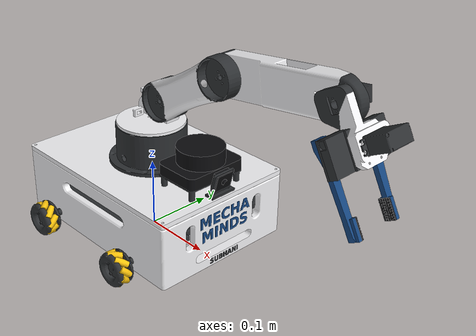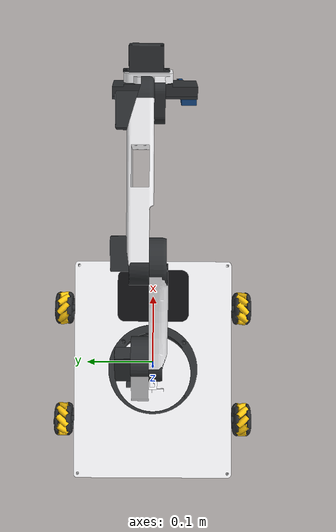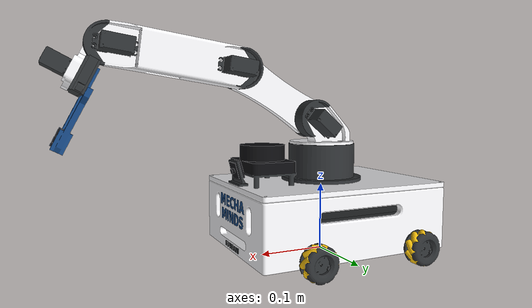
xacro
<?xml version="1.0"?>
<robot name="amr" xmlns:xacro="http://www.ros.org/wiki/xacro" xmlns:gz="http://gazebosim.org/schema">
  <xacro:arg name="sim" default="false"/>
  <xacro:arg name="namespace" default=""/>
  <xacro:arg name="controllers" default=""/>
  <xacro:property name="is_sim" value="$(arg sim)"/>
  <xacro:property name="grip_margin" value="${0.03 if str(is_sim).lower() == 'true' else 0.0}"/>

  <xacro:include filename="$(find amr_description)/urdf/generated/amr_cad.xacro"/>
  <xacro:include filename="$(find amr_description)/urdf/gripper.xacro"/>

  <!-- 2 left + 2 right wheels, in the X roller pattern -->
  <xacro:macro name="mecanum_wheel" params="name x y z radius mass width">
    <link name="${name}_wheel">
      <inertial><mass value="${mass}"/>
        <inertia ixx="${mass*(3*radius*radius+width*width)/12}" ixy="0" ixz="0"
                 iyy="${mass*radius*radius/2}" iyz="0" izz="${mass*(3*radius*radius+width*width)/12}"/>
      </inertial>
      <visual><geometry><mesh filename="package://amr_description/meshes/visual/wheel_${name}__hub.stl"/></geometry>
        <material name="amr_hub"><color rgba="0.18 0.19 0.20 1"/></material></visual>
      <visual><geometry><mesh filename="package://amr_description/meshes/visual/wheel_${name}__roller.stl"/></geometry>
        <material name="amr_roller"><color rgba="1.00 0.78 0.05 1"/></material></visual>
      <!-- a sphere rolls cleanly. Gazebo adds roller friction to it: see amr_gazebo/launch/robot_sdf.py -->
      <collision name="${name}_wheel"><geometry><sphere radius="${radius}"/></geometry></collision>
    </link>
    <joint name="${name}_wheel_joint" type="continuous">
      <parent link="base_link"/><child link="${name}_wheel"/>
      <origin xyz="${x} ${y} ${z}"/><axis xyz="0 1 0"/>
      <limit effort="3.0" velocity="25.0"/><dynamics damping="0.01" friction="0.01"/>
    </joint>
  </xacro:macro>

  <xacro:amr_cad_body/>
  <xacro:amr_gripper/>
  <xacro:amr_cad_wheels/>

  <!-- ===== sensors ===== -->
  <xacro:property name="lidar_x" value="0.100"/>
  <xacro:property name="camera_x" value="0.1375"/>

  <link name="lidar_mount">
    <inertial><origin xyz="0 0 0.012"/><mass value="0.03"/><inertia ixx="2e-5" ixy="0" ixz="0" iyy="1e-5" iyz="0" izz="3e-5"/></inertial>
    <visual><geometry><mesh filename="package://amr_description/meshes/mounts/lidar_mount.stl" scale="0.001 0.001 0.001"/></geometry>
      <material name="amr_mount"><color rgba="0.18 0.19 0.20 1"/></material></visual>
  </link>
  <joint name="lidar_mount_joint" type="fixed"><parent link="base_link"/><child link="lidar_mount"/>
    <origin xyz="${lidar_x} 0 ${deck_z}"/></joint>

  <!-- lidar_link origin is the scan plane: 18 mm mount + 32 mm to the optical centre -->
  <link name="lidar_link">
    <inertial><mass value="0.19"/><inertia ixx="1e-4" ixy="0" ixz="0" iyy="1e-4" iyz="0" izz="1e-4"/></inertial>
    <visual><origin xyz="0 0 -0.032"/><geometry><mesh filename="package://amr_description/meshes/mounts/lidar_body.stl" scale="0.001 0.001 0.001"/></geometry>
      <material name="amr_black"><color rgba="0.05 0.05 0.06 1"/></material></visual>
    <collision><origin xyz="0 0 -0.013"/><geometry><cylinder radius="0.035" length="0.038"/></geometry></collision>
  </link>
  <joint name="lidar_joint" type="fixed"><parent link="lidar_mount"/><child link="lidar_link"/>
    <origin xyz="0 0 0.050"/></joint>

  <link name="camera_mount">
    <inertial><origin xyz="0 0 0.01"/><mass value="0.015"/><inertia ixx="3e-6" ixy="0" ixz="0" iyy="3e-6" iyz="0" izz="3e-6"/></inertial>
    <visual><geometry><mesh filename="package://amr_description/meshes/mounts/camera_mount.stl" scale="0.001 0.001 0.001"/></geometry>
      <material name="amr_mount"><color rgba="0.18 0.19 0.20 1"/></material></visual>
  </link>
  <joint name="camera_mount_joint" type="fixed"><parent link="base_link"/><child link="camera_mount"/>
    <origin xyz="${camera_x} 0 ${deck_z}"/></joint>

  <!-- camera_link: x along the lens, tilted 15 degrees down -->
  <link name="camera_link">
    <inertial><mass value="0.02"/><inertia ixx="2e-6" ixy="0" ixz="0" iyy="2e-6" iyz="0" izz="2e-6"/></inertial>
    <visual><origin xyz="-0.0045 0 0"/><geometry><mesh filename="package://amr_description/meshes/mounts/camera_body.stl" scale="0.001 0.001 0.001"/></geometry>
      <material name="amr_black"><color rgba="0.05 0.05 0.06 1"/></material></visual>
  </link>
  <joint name="camera_joint" type="fixed"><parent link="camera_mount"/><child link="camera_link"/>
    <origin xyz="0.0065 0 0.020" rpy="0 ${radians(15)} 0"/></joint>
  <link name="camera_optical_frame"/>
  <joint name="camera_optical_joint" type="fixed"><parent link="camera_link"/><child link="camera_optical_frame"/>
    <origin rpy="${-pi/2} 0 ${-pi/2}"/></joint>

  <!-- Front-face branding: visual only, meshes are in the base_link frame (make_mounts.py) -->
  <link name="branding">
    <inertial><mass value="0.001"/><inertia ixx="1e-7" ixy="0" ixz="0" iyy="1e-7" iyz="0" izz="1e-7"/></inertial>
    <visual><geometry><mesh filename="package://amr_description/meshes/mounts/brand_name.stl" scale="0.001 0.001 0.001"/></geometry>
      <material name="amr_brand_blue"><color rgba="0.08 0.27 0.50 1"/></material></visual>
    <visual><geometry><mesh filename="package://amr_description/meshes/mounts/brand_author.stl" scale="0.001 0.001 0.001"/></geometry>
      <material name="amr_brand_dark"><color rgba="0.18 0.19 0.20 1"/></material></visual>
  </link>
  <joint name="branding_joint" type="fixed"><parent link="base_link"/><child link="branding"/></joint>

  <xacro:if value="${is_sim}">
    <xacro:include filename="$(find amr_description)/urdf/amr.gazebo.xacro"/>
    <xacro:amr_gazebo namespace="$(arg namespace)" controllers="$(arg controllers)"/>
  </xacro:if>
</robot>

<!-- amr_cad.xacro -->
<!-- GENERATED by tools/cad_to_urdf.py from cad/mobile_base_1_robotic_arm.STEP. Do not edit; re-run the tool. -->
<robot xmlns:xacro="http://www.ros.org/wiki/xacro">
  <xacro:property name="wheel_radius" value="0.02442"/>
  <xacro:property name="grip_x" value="0.030152"/>
  <xacro:property name="grip_y" value="-0.000693"/>
  <xacro:property name="grip_z" value="-0.039474"/>
  <xacro:property name="grip_pitch" value="-0.487586"/>
  <xacro:property name="deck_z" value="0.10842"/>
  <xacro:macro name="amr_cad_body">
  <link name="base_link">
    <inertial><origin xyz="-0.005331 0.000157 0.056978" rpy="0 0 0"/><mass value="3.51685"/><inertia ixx="0.01719328" ixy="0.00000840" ixz="0.00033798" iyy="0.03018462" iyz="-0.00004636" izz="0.04001222"/></inertial>
    <visual name="base_link_body"><geometry><mesh filename="package://amr_description/meshes/visual/base_link__body.stl"/></geometry><material name="amr_body"><color rgba="0.960000 0.960000 0.970000 1.000000"/></material></visual>
    <visual name="base_link_metal"><geometry><mesh filename="package://amr_description/meshes/visual/base_link__metal.stl"/></geometry><material name="amr_metal"><color rgba="0.180000 0.190000 0.200000 1.000000"/></material></visual>
    <visual name="base_link_motor"><geometry><mesh filename="package://amr_description/meshes/visual/base_link__motor.stl"/></geometry><material name="amr_motor"><color rgba="0.180000 0.190000 0.200000 1.000000"/></material></visual>
    <visual name="base_link_deck"><geometry><mesh filename="package://amr_description/meshes/visual/base_link__deck.stl"/></geometry><material name="amr_deck"><color rgba="0.960000 0.960000 0.970000 1.000000"/></material></visual>
    <visual name="base_link_plate"><geometry><mesh filename="package://amr_description/meshes/visual/base_link__plate.stl"/></geometry><material name="amr_plate"><color rgba="0.180000 0.190000 0.200000 1.000000"/></material></visual>
    <visual name="base_link_pcb"><geometry><mesh filename="package://amr_description/meshes/visual/base_link__pcb.stl"/></geometry><material name="amr_pcb"><color rgba="0.180000 0.190000 0.200000 1.000000"/></material></visual>
    <visual name="base_link_joint"><geometry><mesh filename="package://amr_description/meshes/visual/base_link__joint.stl"/></geometry><material name="amr_joint"><color rgba="0.180000 0.190000 0.200000 1.000000"/></material></visual>
    <visual name="base_link_servo"><geometry><mesh filename="package://amr_description/meshes/visual/base_link__servo.stl"/></geometry><material name="amr_servo"><color rgba="0.180000 0.190000 0.200000 1.000000"/></material></visual>
    <collision name="chassis_collision"><origin xyz="0 0 0.05942"/><geometry><box size="0.295 0.215 0.09800"/></geometry></collision>
    <collision name="arm_pedestal_collision"><origin xyz="0 0 0.13592"/><geometry><cylinder radius="0.0605" length="0.05500"/></geometry></collision>
  </link>

  <link name="arm_turret">
    <inertial><origin xyz="0.009924 0.017912 0.025527" rpy="0 0 0"/><mass value="0.10950"/><inertia ixx="0.00006434" ixy="-0.00000663" ixz="-0.00001444" iyy="0.00006900" iyz="-0.00001215" izz="0.00007406"/></inertial>
    <visual name="arm_turret_arm"><geometry><mesh filename="package://amr_description/meshes/visual/arm_turret__arm.stl"/></geometry><material name="amr_arm"><color rgba="0.960000 0.960000 0.970000 1.000000"/></material></visual>
    <visual name="arm_turret_servo"><geometry><mesh filename="package://amr_description/meshes/visual/arm_turret__servo.stl"/></geometry><material name="amr_servo"><color rgba="0.180000 0.190000 0.200000 1.000000"/></material></visual>
    <visual name="arm_turret_joint"><geometry><mesh filename="package://amr_description/meshes/visual/arm_turret__joint.stl"/></geometry><material name="amr_joint"><color rgba="0.180000 0.190000 0.200000 1.000000"/></material></visual>
    <collision name="arm_turret_collision"><geometry><mesh filename="package://amr_description/meshes/collision/arm_turret.stl"/></geometry></collision>
  </link>

  <link name="arm_upper">
    <inertial><origin xyz="0.057685 -0.003706 0.034807" rpy="0 0 0"/><mass value="0.09840"/><inertia ixx="0.00007663" ixy="0.00000054" ixz="-0.00008514" iyy="0.00023726" iyz="0.00000030" izz="0.00016798"/></inertial>
    <visual name="arm_upper_arm"><geometry><mesh filename="package://amr_description/meshes/visual/arm_upper__arm.stl"/></geometry><material name="amr_arm"><color rgba="0.960000 0.960000 0.970000 1.000000"/></material></visual>
    <visual name="arm_upper_joint"><geometry><mesh filename="package://amr_description/meshes/visual/arm_upper__joint.stl"/></geometry><material name="amr_joint"><color rgba="0.180000 0.190000 0.200000 1.000000"/></material></visual>
    <collision name="arm_upper_collision"><geometry><mesh filename="package://amr_description/meshes/collision/arm_upper.stl"/></geometry></collision>
  </link>

  <link name="arm_forearm">
    <inertial><origin xyz="0.084882 0.019654 0.011834" rpy="0 0 0"/><mass value="0.24016"/><inertia ixx="0.00009471" ixy="0.00003236" ixz="-0.00014888" iyy="0.00116809" iyz="0.00000451" izz="0.00114227"/></inertial>
    <visual name="arm_forearm_arm"><geometry><mesh filename="package://amr_description/meshes/visual/arm_forearm__arm.stl"/></geometry><material name="amr_arm"><color rgba="0.960000 0.960000 0.970000 1.000000"/></material></visual>
    <visual name="arm_forearm_servo"><geometry><mesh filename="package://amr_description/meshes/visual/arm_forearm__servo.stl"/></geometry><material name="amr_servo"><color rgba="0.180000 0.190000 0.200000 1.000000"/></material></visual>
    <visual name="arm_forearm_joint"><geometry><mesh filename="package://amr_description/meshes/visual/arm_forearm__joint.stl"/></geometry><material name="amr_joint"><color rgba="0.180000 0.190000 0.200000 1.000000"/></material></visual>
    <collision name="arm_forearm_collision"><geometry><mesh filename="package://amr_description/meshes/collision/arm_forearm.stl"/></geometry></collision>
  </link>

  <link name="arm_wrist">
    <inertial><origin xyz="0.042666 0.005774 -0.023243" rpy="0 0 0"/><mass value="0.08184"/><inertia ixx="0.00002886" ixy="-0.00000950" ixz="0.00001318" iyy="0.00005679" iyz="0.00000405" izz="0.00005535"/></inertial>
    <visual name="arm_wrist_arm"><geometry><mesh filename="package://amr_description/meshes/visual/arm_wrist__arm.stl"/></geometry><material name="amr_arm"><color rgba="0.960000 0.960000 0.970000 1.000000"/></material></visual>
    <visual name="arm_wrist_servo"><geometry><mesh filename="package://amr_description/meshes/visual/arm_wrist__servo.stl"/></geometry><material name="amr_servo"><color rgba="0.180000 0.190000 0.200000 1.000000"/></material></visual>
    <visual name="arm_wrist_joint"><geometry><mesh filename="package://amr_description/meshes/visual/arm_wrist__joint.stl"/></geometry><material name="amr_joint"><color rgba="0.180000 0.190000 0.200000 1.000000"/></material></visual>
    <collision name="arm_wrist_collision"><geometry><mesh filename="package://amr_description/meshes/collision/arm_wrist.stl"/></geometry></collision>
  </link>

  <joint name="arm_waist_joint" type="revolute"><parent link="base_link"/><child link="arm_turret"/><origin xyz="0.000000 0.000000 0.163424" rpy="0 0 0"/><axis xyz="0.000000 0.000000 1.000000"/><limit lower="-1.5700" upper="1.5700" effort="1.0" velocity="1.5"/><dynamics damping="0.02" friction="0.01"/></joint>
  <joint name="arm_shoulder_joint" type="revolute"><parent link="arm_turret"/><child link="arm_upper"/><origin xyz="0.021710 0.000000 0.037910" rpy="0 0 0"/><axis xyz="0.000000 1.000000 0.000000"/><limit lower="-1.0500" upper="0.5900" effort="3.0" velocity="1.5"/><dynamics damping="0.02" friction="0.01"/></joint>
  <joint name="arm_elbow_joint" type="revolute"><parent link="arm_upper"/><child link="arm_forearm"/><origin xyz="0.114793 0.000000 0.069127" rpy="0 0 0"/><axis xyz="0.000000 1.000000 0.000000"/><limit lower="-1.5700" upper="1.0100" effort="2.0" velocity="1.5"/><dynamics damping="0.02" friction="0.01"/></joint>
  <joint name="arm_wrist_joint" type="revolute"><parent link="arm_forearm"/><child link="arm_wrist"/><origin xyz="0.177285 0.000000 0.024716" rpy="0 0 0"/><axis xyz="0.000000 1.000000 0.000000"/><limit lower="-1.5700" upper="1.1000" effort="1.0" velocity="1.5"/><dynamics damping="0.02" friction="0.01"/></joint>

  </xacro:macro>
  <xacro:macro name="amr_cad_wheels">
  <xacro:mecanum_wheel name="front_left" x="0.08250" y="0.13190" z="0.02442" radius="0.02442" mass="0.09" width="0.025"/>
  <xacro:mecanum_wheel name="front_right" x="0.08250" y="-0.13190" z="0.02442" radius="0.02442" mass="0.09" width="0.025"/>
  <xacro:mecanum_wheel name="rear_left" x="-0.08250" y="0.13190" z="0.02442" radius="0.02442" mass="0.09" width="0.025"/>
  <xacro:mecanum_wheel name="rear_right" x="-0.08250" y="-0.13190" z="0.02442" radius="0.02442" mass="0.09" width="0.025"/>
  </xacro:macro>
</robot>

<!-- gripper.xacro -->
<robot xmlns:xacro="http://www.ros.org/wiki/xacro">
  <xacro:property name="gear_r" value="0.0125"/>
  <xacro:property name="grip_q_max" value="2.2"/>
  <xacro:property name="tcp_fx" value="-0.0145"/>
  <xacro:property name="tcp_fz" value="-0.0922"/>
  <xacro:property name="pad_fx" value="-0.0145"/>
  <xacro:property name="pad_fz" value="-0.081"/>

  <xacro:macro name="grip_visual" params="mesh material rgba">
    <visual><origin rpy="0 ${grip_pitch} 0"/>
      <geometry><mesh filename="package://amr_description/meshes/gripper/${mesh}.stl" scale="0.001 0.001 0.001"/></geometry>
      <material name="${material}"><color rgba="${rgba}"/></material></visual>
  </xacro:macro>
  <xacro:macro name="grip_inertial" params="mass">
    <inertial><mass value="${mass}"/><inertia ixx="1e-5" ixy="0" ixz="0" iyy="1e-5" iyz="0" izz="1e-5"/></inertial>
  </xacro:macro>

  <xacro:macro name="jaw" params="side finger rack pad sign">
    <link name="gripper_finger_${side}">
      <xacro:grip_inertial mass="0.025"/>
      <xacro:grip_visual mesh="${finger}" material="amr_accent" rgba="0.08 0.27 0.50 1"/>
      <xacro:grip_visual mesh="${pad}" material="amr_pad" rgba="0.05 0.05 0.06 1"/>
      <xacro:grip_visual mesh="${rack}" material="amr_gear" rgba="0.18 0.19 0.20 1"/>
      <collision name="gripper_finger_${side}_pad">
        <origin xyz="${pad_fx * cos(grip_pitch) + pad_fz * sin(grip_pitch)} ${sign * 0.02925} ${-pad_fx * sin(grip_pitch) + pad_fz * cos(grip_pitch)}" rpy="0 ${grip_pitch} 0"/>
        <geometry><box size="0.015 0.0025 0.026"/></geometry></collision>
    </link>
    <joint name="gripper_finger_${side}_joint" type="prismatic">
      <parent link="arm_wrist"/><child link="gripper_finger_${side}"/>
      <origin xyz="${grip_x} ${grip_y} ${grip_z}"/><axis xyz="0 ${-sign} 0"/>
      <limit lower="${-grip_margin * gear_r}" upper="${(grip_q_max + grip_margin) * gear_r}" effort="30" velocity="0.05"/>
      <dynamics damping="0.5" friction="0.01"/>
      <mimic joint="gripper_joint" multiplier="${gear_r}" offset="0"/>
    </joint>
  </xacro:macro>

  <xacro:macro name="amr_gripper">
    <link name="gripper_base">
      <xacro:grip_inertial mass="0.04"/>
      <xacro:grip_visual mesh="base" material="amr_gear" rgba="0.18 0.19 0.20 1"/>
      <xacro:grip_visual mesh="cover" material="amr_gear" rgba="0.18 0.19 0.20 1"/>
    </link>
    <joint name="gripper_base_joint" type="fixed"><parent link="arm_wrist"/><child link="gripper_base"/>
      <origin xyz="${grip_x} ${grip_y} ${grip_z}"/></joint>

    <link name="gripper_pinion">
      <xacro:grip_inertial mass="0.01"/>
      <xacro:grip_visual mesh="pinion" material="amr_gear" rgba="0.18 0.19 0.20 1"/>
    </link>
    <joint name="gripper_joint" type="revolute"><parent link="arm_wrist"/><child link="gripper_pinion"/>
      <origin xyz="${grip_x} ${grip_y} ${grip_z}"/>
      <axis xyz="${-cos(grip_pitch)} 0 ${sin(grip_pitch)}"/>
      <limit lower="${-grip_margin}" upper="${grip_q_max + grip_margin}" effort="1.0" velocity="1.5"/>
      <dynamics damping="0.02" friction="0.01"/></joint>

    <xacro:jaw side="left" finger="finger_left" rack="rack_lower" pad="pad_left" sign="1"/>
    <xacro:jaw side="right" finger="finger_right" rack="rack_upper" pad="pad_right" sign="-1"/>

    <link name="gripper_tcp"/>
    <joint name="gripper_tcp_joint" type="fixed"><parent link="arm_wrist"/><child link="gripper_tcp"/>
      <origin xyz="${grip_x + tcp_fx * cos(grip_pitch) + tcp_fz * sin(grip_pitch)} ${grip_y} ${grip_z - tcp_fx * sin(grip_pitch) + tcp_fz * cos(grip_pitch)}"/></joint>
  </xacro:macro>
</robot>
